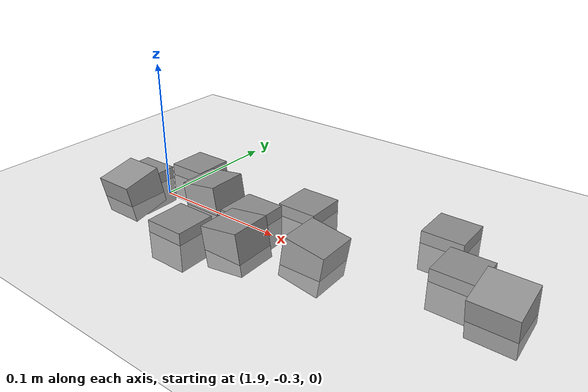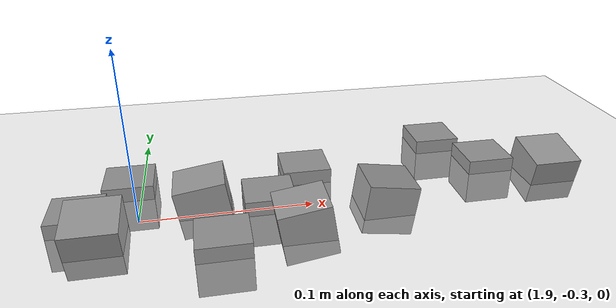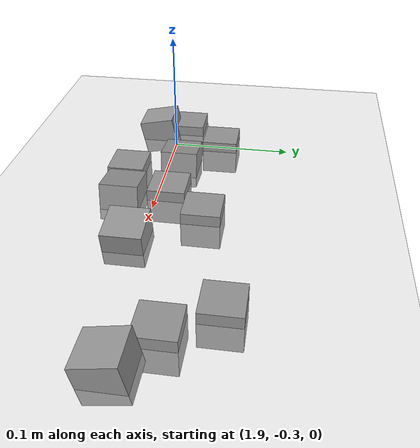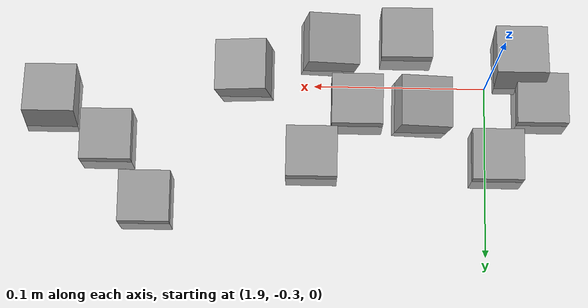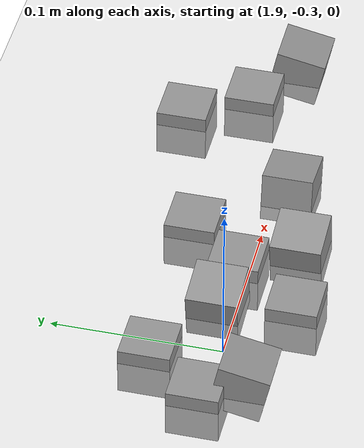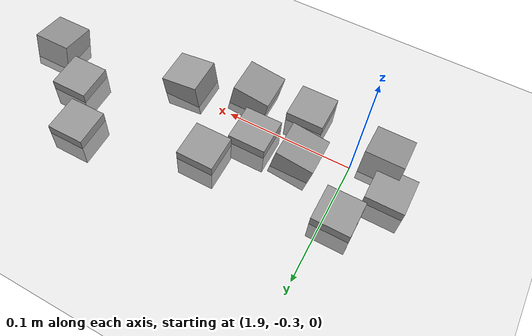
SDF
<sdf version="1.7">
 <world name="default">
  <model name="ground_plane">
   <static>1</static>
   <link name="link">
    <collision name="collision">
     <geometry><plane><normal>0 0 1</normal><size>100 100</size></plane></geometry>
     <surface><friction><ode><mu>100</mu><mu2>50</mu2></ode></friction></surface>
    </collision>
    <visual name="visual">
     <cast_shadows>0</cast_shadows>
     <geometry><plane><normal>0 0 1</normal><size>100 100</size></plane></geometry>
     <material>
      <script><uri>file://media/materials/scripts/gazebo.material</uri><name>Gazebo/Grey</name></script>
     </material>
    </visual>
   </link>
  </model>
  <model name="stone_road_2">
   <link name="link_0_clone_10">
    <inertial>
     <mass>1</mass>
     <inertia>
      <ixx>0.166667</ixx>
      <ixy>0</ixy>
      <ixz>0</ixz>
      <iyy>0.166667</iyy>
      <iyz>0</iyz>
      <izz>0.166667</izz>
     </inertia>
    </inertial>
    <pose>-0.01295 0.17123 0.003778 0.2 -0 0</pose>
    <kinematic>1</kinematic>
    <visual name="visual">
     <geometry><box><size>0.03 0.03 0.03</size></box></geometry>
     <material>
      <lighting>1</lighting>
      <script><uri>file://media/materials/scripts/gazebo.material</uri><name>Gazebo/Grey</name></script>
      <shader type="pixel"><normal_map>__default__</normal_map></shader>
      <ambient>0.3 0.3 0.3 1</ambient>
      <diffuse>0.7 0.7 0.7 1</diffuse>
      <specular>0.01 0.01 0.01 1</specular>
      <emissive>0 0 0 1</emissive>
     </material>
    </visual>
    <collision name="collision">
     <geometry><box><size>0.03 0.03 0.03</size></box></geometry>
     <surface>
      <friction>
       <ode><mu>1</mu><mu2>1</mu2><fdir1>0 0 0</fdir1><slip1>0</slip1><slip2>0</slip2></ode>
       <torsional>
        <coefficient>1</coefficient>
        <patch_radius>0</patch_radius>
        <surface_radius>0</surface_radius>
        <use_patch_radius>1</use_patch_radius>
        <ode><slip>0</slip></ode>
       </torsional>
      </friction>
      <bounce><restitution_coefficient>0</restitution_coefficient><threshold>1e+06</threshold></bounce>
      <contact>
       <collide_without_contact>0</collide_without_contact>
       <collide_without_contact_bitmask>1</collide_without_contact_bitmask>
       <collide_bitmask>1</collide_bitmask>
       <ode>
        <soft_cfm>0</soft_cfm>
        <soft_erp>0.2</soft_erp>
        <kp>1e+13</kp>
        <kd>1</kd>
        <max_vel>0.01</max_vel>
        <min_depth>0</min_depth>
       </ode>
       <bullet>
        <split_impulse>1</split_impulse>
        <split_impulse_penetration_threshold>-0.01</split_impulse_penetration_threshold>
        <soft_cfm>0</soft_cfm>
        <soft_erp>0.2</soft_erp>
        <kp>1e+13</kp>
        <kd>1</kd>
       </bullet>
      </contact>
     </surface>
    </collision>
   </link>
   <link name="link_0_clone_2_clone_2_clone_10">
    <inertial>
     <mass>1</mass>
     <inertia>
      <ixx>0.166667</ixx>
      <ixy>0</ixy>
      <ixz>0</ixz>
      <iyy>0.166667</iyy>
      <iyz>0</iyz>
      <izz>0.166667</izz>
     </inertia>
    </inertial>
    <pose>0.09869 0.163436 0.003778 0 -0.15 0</pose>
    <kinematic>1</kinematic>
    <visual name="visual">
     <geometry><box><size>0.03 0.03 0.03</size></box></geometry>
     <material>
      <lighting>1</lighting>
      <script><uri>file://media/materials/scripts/gazebo.material</uri><name>Gazebo/Grey</name></script>
      <shader type="pixel"><normal_map>__default__</normal_map></shader>
      <ambient>0.3 0.3 0.3 1</ambient>
      <diffuse>0.7 0.7 0.7 1</diffuse>
      <specular>0.01 0.01 0.01 1</specular>
      <emissive>0 0 0 1</emissive>
     </material>
    </visual>
    <collision name="collision">
     <geometry><box><size>0.03 0.03 0.03</size></box></geometry>
     <surface>
      <friction>
       <ode><mu>1</mu><mu2>1</mu2><fdir1>0 0 0</fdir1><slip1>0</slip1><slip2>0</slip2></ode>
       <torsional>
        <coefficient>1</coefficient>
        <patch_radius>0</patch_radius>
        <surface_radius>0</surface_radius>
        <use_patch_radius>1</use_patch_radius>
        <ode><slip>0</slip></ode>
       </torsional>
      </friction>
      <bounce><restitution_coefficient>0</restitution_coefficient><threshold>1e+06</threshold></bounce>
      <contact>
       <collide_without_contact>0</collide_without_contact>
       <collide_without_contact_bitmask>1</collide_without_contact_bitmask>
       <collide_bitmask>1</collide_bitmask>
       <ode>
        <soft_cfm>0</soft_cfm>
        <soft_erp>0.2</soft_erp>
        <kp>1e+13</kp>
        <kd>1</kd>
        <max_vel>0.01</max_vel>
        <min_depth>0</min_depth>
       </ode>
       <bullet>
        <split_impulse>1</split_impulse>
        <split_impulse_penetration_threshold>-0.01</split_impulse_penetration_threshold>
        <soft_cfm>0</soft_cfm>
        <soft_erp>0.2</soft_erp>
        <kp>1e+13</kp>
        <kd>1</kd>
       </bullet>
      </contact>
     </surface>
    </collision>
   </link>
   <link name="link_0_clone_2_clone_2_clone_12">
    <inertial>
     <mass>1</mass>
     <inertia>
      <ixx>0.166667</ixx>
      <ixy>0</ixy>
      <ixz>0</ixz>
      <iyy>0.166667</iyy>
      <iyz>0</iyz>
      <izz>0.166667</izz>
     </inertia>
    </inertial>
    <pose>0.044693 0.200081 0.003778 0 -0.15 0</pose>
    <kinematic>1</kinematic>
    <visual name="visual">
     <geometry><box><size>0.03 0.03 0.03</size></box></geometry>
     <material>
      <lighting>1</lighting>
      <script><uri>file://media/materials/scripts/gazebo.material</uri><name>Gazebo/Grey</name></script>
      <shader type="pixel"><normal_map>__default__</normal_map></shader>
      <ambient>0.3 0.3 0.3 1</ambient>
      <diffuse>0.7 0.7 0.7 1</diffuse>
      <specular>0.01 0.01 0.01 1</specular>
      <emissive>0 0 0 1</emissive>
     </material>
    </visual>
    <collision name="collision">
     <geometry><box><size>0.03 0.03 0.03</size></box></geometry>
     <surface>
      <friction>
       <ode><mu>1</mu><mu2>1</mu2><fdir1>0 0 0</fdir1><slip1>0</slip1><slip2>0</slip2></ode>
       <torsional>
        <coefficient>1</coefficient>
        <patch_radius>0</patch_radius>
        <surface_radius>0</surface_radius>
        <use_patch_radius>1</use_patch_radius>
        <ode><slip>0</slip></ode>
       </torsional>
      </friction>
      <bounce><restitution_coefficient>0</restitution_coefficient><threshold>1e+06</threshold></bounce>
      <contact>
       <collide_without_contact>0</collide_without_contact>
       <collide_without_contact_bitmask>1</collide_without_contact_bitmask>
       <collide_bitmask>1</collide_bitmask>
       <ode>
        <soft_cfm>0</soft_cfm>
        <soft_erp>0.2</soft_erp>
        <kp>1e+13</kp>
        <kd>1</kd>
        <max_vel>0.01</max_vel>
        <min_depth>0</min_depth>
       </ode>
       <bullet>
        <split_impulse>1</split_impulse>
        <split_impulse_penetration_threshold>-0.01</split_impulse_penetration_threshold>
        <soft_cfm>0</soft_cfm>
        <soft_erp>0.2</soft_erp>
        <kp>1e+13</kp>
        <kd>1</kd>
       </bullet>
      </contact>
     </surface>
    </collision>
   </link>
   <link name="link_0_clone_2_clone_2_clone_13_clone_clone_16">
    <inertial>
     <mass>1</mass>
     <inertia>
      <ixx>0.166667</ixx>
      <ixy>0</ixy>
      <ixz>0</ixz>
      <iyy>0.166667</iyy>
      <iyz>0</iyz>
      <izz>0.166667</izz>
     </inertia>
    </inertial>
    <pose>0.108948 0.22849 -0.006222 0 -0 0</pose>
    <kinematic>1</kinematic>
    <visual name="visual">
     <geometry><box><size>0.03 0.03 0.03</size></box></geometry>
     <material>
      <lighting>1</lighting>
      <script><uri>file://media/materials/scripts/gazebo.material</uri><name>Gazebo/Grey</name></script>
      <shader type="pixel"><normal_map>__default__</normal_map></shader>
      <ambient>0.3 0.3 0.3 1</ambient>
      <diffuse>0.7 0.7 0.7 1</diffuse>
      <specular>0.01 0.01 0.01 1</specular>
      <emissive>0 0 0 1</emissive>
     </material>
    </visual>
    <collision name="collision">
     <geometry><box><size>0.03 0.03 0.03</size></box></geometry>
     <surface>
      <friction>
       <ode><mu>1</mu><mu2>1</mu2><fdir1>0 0 0</fdir1><slip1>0</slip1><slip2>0</slip2></ode>
       <torsional>
        <coefficient>1</coefficient>
        <patch_radius>0</patch_radius>
        <surface_radius>0</surface_radius>
        <use_patch_radius>1</use_patch_radius>
        <ode><slip>0</slip></ode>
       </torsional>
      </friction>
      <bounce><restitution_coefficient>0</restitution_coefficient><threshold>1e+06</threshold></bounce>
      <contact>
       <collide_without_contact>0</collide_without_contact>
       <collide_without_contact_bitmask>1</collide_without_contact_bitmask>
       <collide_bitmask>1</collide_bitmask>
       <ode>
        <soft_cfm>0</soft_cfm>
        <soft_erp>0.2</soft_erp>
        <kp>1e+13</kp>
        <kd>1</kd>
        <max_vel>0.01</max_vel>
        <min_depth>0</min_depth>
       </ode>
       <bullet>
        <split_impulse>1</split_impulse>
        <split_impulse_penetration_threshold>-0.01</split_impulse_penetration_threshold>
        <soft_cfm>0</soft_cfm>
        <soft_erp>0.2</soft_erp>
        <kp>1e+13</kp>
        <kd>1</kd>
       </bullet>
      </contact>
     </surface>
    </collision>
   </link>
   <link name="link_0_clone_2_clone_2_clone_13_clone_clone_16_clone">
    <inertial>
     <mass>1</mass>
     <inertia>
      <ixx>0.166667</ixx>
      <ixy>0</ixy>
      <ixz>0</ixz>
      <iyy>0.166667</iyy>
      <iyz>0</iyz>
      <izz>0.166667</izz>
     </inertia>
    </inertial>
    <pose>0.0535 0.156403 -0.006222 0 -0 0</pose>
    <kinematic>1</kinematic>
    <visual name="visual">
     <geometry><box><size>0.03 0.03 0.03</size></box></geometry>
     <material>
      <lighting>1</lighting>
      <script><uri>file://media/materials/scripts/gazebo.material</uri><name>Gazebo/Grey</name></script>
      <shader type="pixel"><normal_map>__default__</normal_map></shader>
      <ambient>0.3 0.3 0.3 1</ambient>
      <diffuse>0.7 0.7 0.7 1</diffuse>
      <specular>0.01 0.01 0.01 1</specular>
      <emissive>0 0 0 1</emissive>
     </material>
    </visual>
    <collision name="collision">
     <geometry><box><size>0.03 0.03 0.03</size></box></geometry>
     <surface>
      <friction>
       <ode><mu>1</mu><mu2>1</mu2><fdir1>0 0 0</fdir1><slip1>0</slip1><slip2>0</slip2></ode>
       <torsional>
        <coefficient>1</coefficient>
        <patch_radius>0</patch_radius>
        <surface_radius>0</surface_radius>
        <use_patch_radius>1</use_patch_radius>
        <ode><slip>0</slip></ode>
       </torsional>
      </friction>
      <bounce><restitution_coefficient>0</restitution_coefficient><threshold>1e+06</threshold></bounce>
      <contact>
       <collide_without_contact>0</collide_without_contact>
       <collide_without_contact_bitmask>1</collide_without_contact_bitmask>
       <collide_bitmask>1</collide_bitmask>
       <ode>
        <soft_cfm>0</soft_cfm>
        <soft_erp>0.2</soft_erp>
        <kp>1e+13</kp>
        <kd>1</kd>
        <max_vel>0.01</max_vel>
        <min_depth>0</min_depth>
       </ode>
       <bullet>
        <split_impulse>1</split_impulse>
        <split_impulse_penetration_threshold>-0.01</split_impulse_penetration_threshold>
        <soft_cfm>0</soft_cfm>
        <soft_erp>0.2</soft_erp>
        <kp>1e+13</kp>
        <kd>1</kd>
       </bullet>
      </contact>
     </surface>
    </collision>
   </link>
   <link name="link_0_clone_2_clone_2_clone_13_clone_clone_16_clone_22">
    <inertial>
     <mass>1</mass>
     <inertia>
      <ixx>0.166667</ixx>
      <ixy>0</ixy>
      <ixz>0</ixz>
      <iyy>0.166667</iyy>
      <iyz>0</iyz>
      <izz>0.166667</izz>
     </inertia>
    </inertial>
    <pose>-0.025872 0.194724 -0.006222 0 -0 0</pose>
    <kinematic>1</kinematic>
    <visual name="visual">
     <geometry><box><size>0.03 0.03 0.03</size></box></geometry>
     <material>
      <lighting>1</lighting>
      <script><uri>file://media/materials/scripts/gazebo.material</uri><name>Gazebo/Grey</name></script>
      <shader type="pixel"><normal_map>__default__</normal_map></shader>
      <ambient>0.3 0.3 0.3 1</ambient>
      <diffuse>0.7 0.7 0.7 1</diffuse>
      <specular>0.01 0.01 0.01 1</specular>
      <emissive>0 0 0 1</emissive>
     </material>
    </visual>
    <collision name="collision">
     <geometry><box><size>0.03 0.03 0.03</size></box></geometry>
     <surface>
      <friction>
       <ode><mu>1</mu><mu2>1</mu2><fdir1>0 0 0</fdir1><slip1>0</slip1><slip2>0</slip2></ode>
       <torsional>
        <coefficient>1</coefficient>
        <patch_radius>0</patch_radius>
        <surface_radius>0</surface_radius>
        <use_patch_radius>1</use_patch_radius>
        <ode><slip>0</slip></ode>
       </torsional>
      </friction>
      <bounce><restitution_coefficient>0</restitution_coefficient><threshold>1e+06</threshold></bounce>
      <contact>
       <collide_without_contact>0</collide_without_contact>
       <collide_without_contact_bitmask>1</collide_without_contact_bitmask>
       <collide_bitmask>1</collide_bitmask>
       <ode>
        <soft_cfm>0</soft_cfm>
        <soft_erp>0.2</soft_erp>
        <kp>1e+13</kp>
        <kd>1</kd>
        <max_vel>0.01</max_vel>
        <min_depth>0</min_depth>
       </ode>
       <bullet>
        <split_impulse>1</split_impulse>
        <split_impulse_penetration_threshold>-0.01</split_impulse_penetration_threshold>
        <soft_cfm>0</soft_cfm>
        <soft_erp>0.2</soft_erp>
        <kp>1e+13</kp>
        <kd>1</kd>
       </bullet>
      </contact>
     </surface>
    </collision>
   </link>
   <link name="link_0_clone_2_clone_2_clone_13_clone_clone_16_clone_23">
    <inertial>
     <mass>1</mass>
     <inertia>
      <ixx>0.166667</ixx>
      <ixy>0</ixy>
      <ixz>0</ixz>
      <iyy>0.166667</iyy>
      <iyz>0</iyz>
      <izz>0.166667</izz>
     </inertia>
    </inertial>
    <pose>0.000385 0.228664 -0.006222 0 -0 0</pose>
    <kinematic>1</kinematic>
    <visual name="visual">
     <geometry><box><size>0.03 0.03 0.03</size></box></geometry>
     <material>
      <lighting>1</lighting>
      <script><uri>file://media/materials/scripts/gazebo.material</uri><name>Gazebo/Grey</name></script>
      <shader type="pixel"><normal_map>__default__</normal_map></shader>
      <ambient>0.3 0.3 0.3 1</ambient>
      <diffuse>0.7 0.7 0.7 1</diffuse>
      <specular>0.01 0.01 0.01 1</specular>
      <emissive>0 0 0 1</emissive>
     </material>
    </visual>
    <collision name="collision">
     <geometry><box><size>0.03 0.03 0.03</size></box></geometry>
     <surface>
      <friction>
       <ode><mu>1</mu><mu2>1</mu2><fdir1>0 0 0</fdir1><slip1>0</slip1><slip2>0</slip2></ode>
       <torsional>
        <coefficient>1</coefficient>
        <patch_radius>0</patch_radius>
        <surface_radius>0</surface_radius>
        <use_patch_radius>1</use_patch_radius>
        <ode><slip>0</slip></ode>
       </torsional>
      </friction>
      <bounce><restitution_coefficient>0</restitution_coefficient><threshold>1e+06</threshold></bounce>
      <contact>
       <collide_without_contact>0</collide_without_contact>
       <collide_without_contact_bitmask>1</collide_without_contact_bitmask>
       <collide_bitmask>1</collide_bitmask>
       <ode>
        <soft_cfm>0</soft_cfm>
        <soft_erp>0.2</soft_erp>
        <kp>1e+13</kp>
        <kd>1</kd>
        <max_vel>0.01</max_vel>
        <min_depth>0</min_depth>
       </ode>
       <bullet>
        <split_impulse>1</split_impulse>
        <split_impulse_penetration_threshold>-0.01</split_impulse_penetration_threshold>
        <soft_cfm>0</soft_cfm>
        <soft_erp>0.2</soft_erp>
        <kp>1e+13</kp>
        <kd>1</kd>
       </bullet>
      </contact>
     </surface>
    </collision>
   </link>
   <link name="link_0_clone_2_clone_2_clone_13_clone_clone_16_clone_24">
    <inertial>
     <mass>1</mass>
     <inertia>
      <ixx>0.166667</ixx>
      <ixy>0</ixy>
      <ixz>0</ixz>
      <iyy>0.166667</iyy>
      <iyz>0</iyz>
      <izz>0.166667</izz>
     </inertia>
    </inertial>
    <pose>0.08246 0.196776 -0.006222 0 -0 0</pose>
    <kinematic>1</kinematic>
    <visual name="visual">
     <geometry><box><size>0.03 0.03 0.03</size></box></geometry>
     <material>
      <lighting>1</lighting>
      <script><uri>file://media/materials/scripts/gazebo.material</uri><name>Gazebo/Grey</name></script>
      <shader type="pixel"><normal_map>__default__</normal_map></shader>
      <ambient>0.3 0.3 0.3 1</ambient>
      <diffuse>0.7 0.7 0.7 1</diffuse>
      <specular>0.01 0.01 0.01 1</specular>
      <emissive>0 0 0 1</emissive>
     </material>
    </visual>
    <collision name="collision">
     <geometry><box><size>0.03 0.03 0.03</size></box></geometry>
     <surface>
      <friction>
       <ode><mu>1</mu><mu2>1</mu2><fdir1>0 0 0</fdir1><slip1>0</slip1><slip2>0</slip2></ode>
       <torsional>
        <coefficient>1</coefficient>
        <patch_radius>0</patch_radius>
        <surface_radius>0</surface_radius>
        <use_patch_radius>1</use_patch_radius>
        <ode><slip>0</slip></ode>
       </torsional>
      </friction>
      <bounce><restitution_coefficient>0</restitution_coefficient><threshold>1e+06</threshold></bounce>
      <contact>
       <collide_without_contact>0</collide_without_contact>
       <collide_without_contact_bitmask>1</collide_without_contact_bitmask>
       <collide_bitmask>1</collide_bitmask>
       <ode>
        <soft_cfm>0</soft_cfm>
        <soft_erp>0.2</soft_erp>
        <kp>1e+13</kp>
        <kd>1</kd>
        <max_vel>0.01</max_vel>
        <min_depth>0</min_depth>
       </ode>
       <bullet>
        <split_impulse>1</split_impulse>
        <split_impulse_penetration_threshold>-0.01</split_impulse_penetration_threshold>
        <soft_cfm>0</soft_cfm>
        <soft_erp>0.2</soft_erp>
        <kp>1e+13</kp>
        <kd>1</kd>
       </bullet>
      </contact>
     </surface>
    </collision>
   </link>
   <link name="link_0_clone_2_clone_9">
    <inertial>
     <mass>1</mass>
     <inertia>
      <ixx>0.166667</ixx>
      <ixy>0</ixy>
      <ixz>0</ixz>
      <iyy>0.166667</iyy>
      <iyz>0</iyz>
      <izz>0.166667</izz>
     </inertia>
    </inertial>
    <pose>0.148876 0.179752 0.003778 0 0.15 0</pose>
    <kinematic>1</kinematic>
    <visual name="visual">
     <geometry><box><size>0.03 0.03 0.03</size></box></geometry>
     <material>
      <lighting>1</lighting>
      <script><uri>file://media/materials/scripts/gazebo.material</uri><name>Gazebo/Grey</name></script>
      <shader type="pixel"><normal_map>__default__</normal_map></shader>
      <ambient>0.3 0.3 0.3 1</ambient>
      <diffuse>0.7 0.7 0.7 1</diffuse>
      <specular>0.01 0.01 0.01 1</specular>
      <emissive>0 0 0 1</emissive>
     </material>
    </visual>
    <collision name="collision">
     <geometry><box><size>0.03 0.03 0.03</size></box></geometry>
     <surface>
      <friction>
       <ode><mu>1</mu><mu2>1</mu2><fdir1>0 0 0</fdir1><slip1>0</slip1><slip2>0</slip2></ode>
       <torsional>
        <coefficient>1</coefficient>
        <patch_radius>0</patch_radius>
        <surface_radius>0</surface_radius>
        <use_patch_radius>1</use_patch_radius>
        <ode><slip>0</slip></ode>
       </torsional>
      </friction>
      <bounce><restitution_coefficient>0</restitution_coefficient><threshold>1e+06</threshold></bounce>
      <contact>
       <collide_without_contact>0</collide_without_contact>
       <collide_without_contact_bitmask>1</collide_without_contact_bitmask>
       <collide_bitmask>1</collide_bitmask>
       <ode>
        <soft_cfm>0</soft_cfm>
        <soft_erp>0.2</soft_erp>
        <kp>1e+13</kp>
        <kd>1</kd>
        <max_vel>0.01</max_vel>
        <min_depth>0</min_depth>
       </ode>
       <bullet>
        <split_impulse>1</split_impulse>
        <split_impulse_penetration_threshold>-0.01</split_impulse_penetration_threshold>
        <soft_cfm>0</soft_cfm>
        <soft_erp>0.2</soft_erp>
        <kp>1e+13</kp>
        <kd>1</kd>
       </bullet>
      </contact>
     </surface>
    </collision>
   </link>
   <static>0</static>
   <pose>1.89226 -0.488312 -0 0 -0 0</pose>
  </model>
  <model name="stone_road_4">
   <link name="link_0_clone_0">
    <inertial>
     <mass>1</mass>
     <inertia>
      <ixx>0.166667</ixx>
      <ixy>0</ixy>
      <ixz>0</ixz>
      <iyy>0.166667</iyy>
      <iyz>0</iyz>
      <izz>0.166667</izz>
     </inertia>
    </inertial>
    <pose>-0.104982 -0.15412 0.003778 0.2 -0 0</pose>
    <kinematic>1</kinematic>
    <visual name="visual">
     <geometry><box><size>0.03 0.03 0.03</size></box></geometry>
     <material>
      <lighting>1</lighting>
      <script><uri>file://media/materials/scripts/gazebo.material</uri><name>Gazebo/Grey</name></script>
      <shader type="pixel"><normal_map>__default__</normal_map></shader>
      <ambient>0.3 0.3 0.3 1</ambient>
      <diffuse>0.7 0.7 0.7 1</diffuse>
      <specular>0.01 0.01 0.01 1</specular>
      <emissive>0 0 0 1</emissive>
     </material>
    </visual>
    <collision name="collision">
     <geometry><box><size>0.03 0.03 0.03</size></box></geometry>
     <surface>
      <friction>
       <ode><mu>1</mu><mu2>1</mu2><fdir1>0 0 0</fdir1><slip1>0</slip1><slip2>0</slip2></ode>
       <torsional>
        <coefficient>1</coefficient>
        <patch_radius>0</patch_radius>
        <surface_radius>0</surface_radius>
        <use_patch_radius>1</use_patch_radius>
        <ode><slip>0</slip></ode>
       </torsional>
      </friction>
      <bounce><restitution_coefficient>0</restitution_coefficient><threshold>1e+06</threshold></bounce>
      <contact>
       <collide_without_contact>0</collide_without_contact>
       <collide_without_contact_bitmask>1</collide_without_contact_bitmask>
       <collide_bitmask>1</collide_bitmask>
       <ode>
        <soft_cfm>0</soft_cfm>
        <soft_erp>0.2</soft_erp>
        <kp>1e+13</kp>
        <kd>1</kd>
        <max_vel>0.01</max_vel>
        <min_depth>0</min_depth>
       </ode>
       <bullet>
        <split_impulse>1</split_impulse>
        <split_impulse_penetration_threshold>-0.01</split_impulse_penetration_threshold>
        <soft_cfm>0</soft_cfm>
        <soft_erp>0.2</soft_erp>
        <kp>1e+13</kp>
        <kd>1</kd>
       </bullet>
      </contact>
     </surface>
    </collision>
   </link>
   <link name="link_0_clone_2_clone_2_clone_13_clone_clone_16_clone_27">
    <inertial>
     <mass>1</mass>
     <inertia>
      <ixx>0.166667</ixx>
      <ixy>0</ixy>
      <ixz>0</ixz>
      <iyy>0.166667</iyy>
      <iyz>0</iyz>
      <izz>0.166667</izz>
     </inertia>
    </inertial>
    <pose>-0.137316 -0.132225 -0.006222 0 -0 0</pose>
    <kinematic>1</kinematic>
    <visual name="visual">
     <geometry><box><size>0.03 0.03 0.03</size></box></geometry>
     <material>
      <lighting>1</lighting>
      <script><uri>file://media/materials/scripts/gazebo.material</uri><name>Gazebo/Grey</name></script>
      <shader type="pixel"><normal_map>__default__</normal_map></shader>
      <ambient>0.3 0.3 0.3 1</ambient>
      <diffuse>0.7 0.7 0.7 1</diffuse>
      <specular>0.01 0.01 0.01 1</specular>
      <emissive>0 0 0 1</emissive>
     </material>
    </visual>
    <collision name="collision">
     <geometry><box><size>0.03 0.03 0.03</size></box></geometry>
     <surface>
      <friction>
       <ode><mu>1</mu><mu2>1</mu2><fdir1>0 0 0</fdir1><slip1>0</slip1><slip2>0</slip2></ode>
       <torsional>
        <coefficient>1</coefficient>
        <patch_radius>0</patch_radius>
        <surface_radius>0</surface_radius>
        <use_patch_radius>1</use_patch_radius>
        <ode><slip>0</slip></ode>
       </torsional>
      </friction>
      <bounce><restitution_coefficient>0</restitution_coefficient><threshold>1e+06</threshold></bounce>
      <contact>
       <collide_without_contact>0</collide_without_contact>
       <collide_without_contact_bitmask>1</collide_without_contact_bitmask>
       <collide_bitmask>1</collide_bitmask>
       <ode>
        <soft_cfm>0</soft_cfm>
        <soft_erp>0.2</soft_erp>
        <kp>1e+13</kp>
        <kd>1</kd>
        <max_vel>0.01</max_vel>
        <min_depth>0</min_depth>
       </ode>
       <bullet>
        <split_impulse>1</split_impulse>
        <split_impulse_penetration_threshold>-0.01</split_impulse_penetration_threshold>
        <soft_cfm>0</soft_cfm>
        <soft_erp>0.2</soft_erp>
        <kp>1e+13</kp>
        <kd>1</kd>
       </bullet>
      </contact>
     </surface>
    </collision>
   </link>
   <link name="link_0_clone_2_clone_2_clone_13_clone_clone_16_clone_30">
    <inertial>
     <mass>1</mass>
     <inertia>
      <ixx>0.166667</ixx>
      <ixy>0</ixy>
      <ixz>0</ixz>
      <iyy>0.166667</iyy>
      <iyz>0</iyz>
      <izz>0.166667</izz>
     </inertia>
    </inertial>
    <pose>-0.160879 -0.095951 -0.006222 0 -0 0</pose>
    <kinematic>1</kinematic>
    <visual name="visual">
     <geometry><box><size>0.03 0.03 0.03</size></box></geometry>
     <material>
      <lighting>1</lighting>
      <script><uri>file://media/materials/scripts/gazebo.material</uri><name>Gazebo/Grey</name></script>
      <shader type="pixel"><normal_map>__default__</normal_map></shader>
      <ambient>0.3 0.3 0.3 1</ambient>
      <diffuse>0.7 0.7 0.7 1</diffuse>
      <specular>0.01 0.01 0.01 1</specular>
      <emissive>0 0 0 1</emissive>
     </material>
    </visual>
    <collision name="collision">
     <geometry><box><size>0.03 0.03 0.03</size></box></geometry>
     <surface>
      <friction>
       <ode><mu>1</mu><mu2>1</mu2><fdir1>0 0 0</fdir1><slip1>0</slip1><slip2>0</slip2></ode>
       <torsional>
        <coefficient>1</coefficient>
        <patch_radius>0</patch_radius>
        <surface_radius>0</surface_radius>
        <use_patch_radius>1</use_patch_radius>
        <ode><slip>0</slip></ode>
       </torsional>
      </friction>
      <bounce><restitution_coefficient>0</restitution_coefficient><threshold>1e+06</threshold></bounce>
      <contact>
       <collide_without_contact>0</collide_without_contact>
       <collide_without_contact_bitmask>1</collide_without_contact_bitmask>
       <collide_bitmask>1</collide_bitmask>
       <ode>
        <soft_cfm>0</soft_cfm>
        <soft_erp>0.2</soft_erp>
        <kp>1e+13</kp>
        <kd>1</kd>
        <max_vel>0.01</max_vel>
        <min_depth>0</min_depth>
       </ode>
       <bullet>
        <split_impulse>1</split_impulse>
        <split_impulse_penetration_threshold>-0.01</split_impulse_penetration_threshold>
        <soft_cfm>0</soft_cfm>
        <soft_erp>0.2</soft_erp>
        <kp>1e+13</kp>
        <kd>1</kd>
       </bullet>
      </contact>
     </surface>
    </collision>
   </link>
   <static>0</static>
   <pose>2.25857 -0.135925 -0 0 -0 0</pose>
  </model>
 </world>
</sdf>
